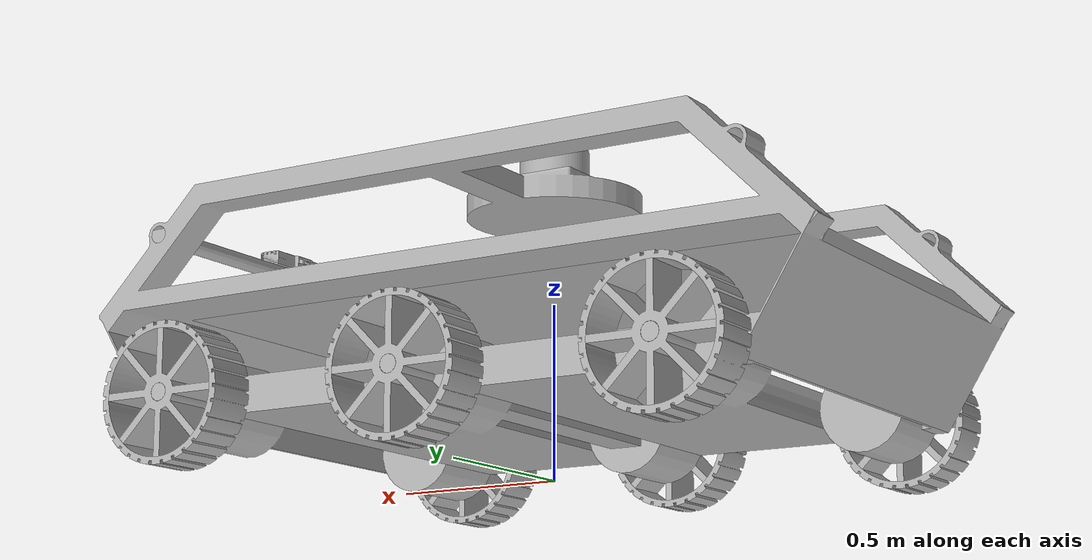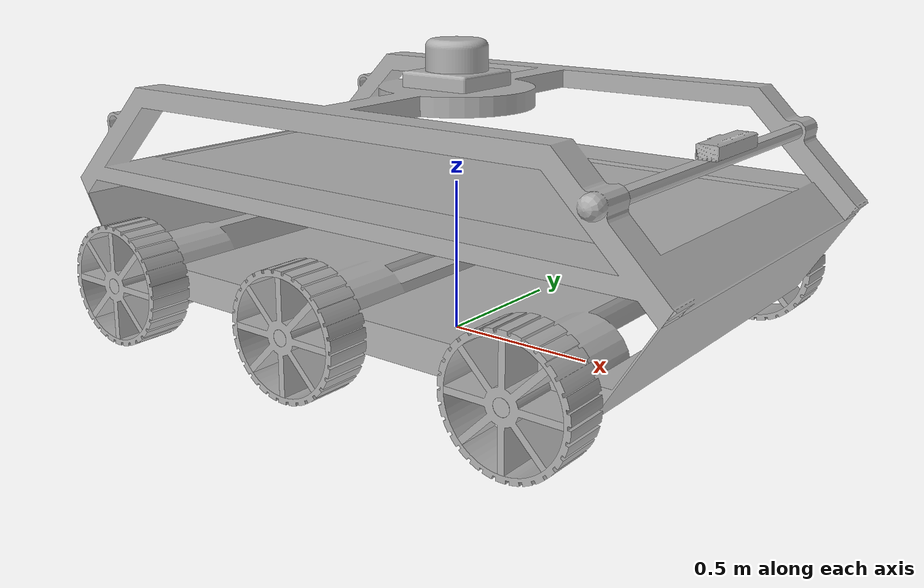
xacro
<?xml version="1.0" ?>
<robot name="big_bot" xmlns:xacro="http://www.ros.org/wiki/xacro">

<xacro:include filename="$(find big_bot_description)/urdf/materials.xacro" />

<xacro:include filename="$(find big_bot_description)/gazebo/big_bot_description_materials.gazebo" />
<xacro:include filename="$(find big_bot_description)/gazebo/big_bot_description_physics.gazebo" />
<xacro:include filename="$(find big_bot_description)/gazebo/big_bot_description_plugins.gazebo" />

<link name="base_link">
  <inertial>
    <origin rpy="0 0 0" xyz="0.0011053228922126006 -0.026924206803117964 0.3959361322214379"/>
    <mass value="184.49373888112405"/>
    <inertia ixx="49.458199" ixy="0.236093" ixz="-0.059576" iyy="80.257636" iyz="-0.843307" izz="110.187792"/>
  </inertial>
  <visual>
    <origin rpy="0 0 0" xyz="0 0 0"/>
    <geometry>
      <mesh filename="package://big_bot_description/meshes/base_link.stl" scale="0.001 0.001 0.001"/>
    </geometry>
    <material name="silver"/>
  </visual>
  <collision>
    <origin rpy="0 0 0" xyz="0 0 0"/>
    <geometry>
      <mesh filename="package://big_bot_description/meshes/base_link.stl" scale="0.001 0.001 0.001"/>
    </geometry>
  </collision>
</link>

<link name="lidar_1">
  <inertial>
    <origin rpy="0 0 0" xyz="-1.7658954039907791e-16 1.3734742031039391e-16 0.047014448995088665"/>
    <mass value="1.3952248482751741"/>
    <inertia ixx="0.007137" ixy="-0.0" ixz="-0.0" iyy="0.007137" iyz="0.0" izz="0.009989"/>
  </inertial>
  <visual>
    <origin rpy="0 0 0" xyz="-0.0 -0.0 -0.861786"/>
    <geometry>
      <mesh filename="package://big_bot_description/meshes/lidar_1.stl" scale="0.001 0.001 0.001"/>
    </geometry>
    <material name="silver"/>
  </visual>
  <collision>
    <origin rpy="0 0 0" xyz="-0.0 -0.0 -0.861786"/>
    <geometry>
      <mesh filename="package://big_bot_description/meshes/lidar_1.stl" scale="0.001 0.001 0.001"/>
    </geometry>
  </collision>
</link>

<link name="lid_1">
  <inertial>
    <origin rpy="0 0 0" xyz="0.0 0.55 -2.299357713120287e-07"/>
    <mass value="64.19200127860375"/>
    <inertia ixx="6.476037" ixy="0.0" ixz="0.0" iyy="20.586036" iyz="0.0" izz="27.055386"/>
  </inertial>
  <visual>
    <origin rpy="0 0 0" xyz="-0.0 0.55 -0.505893"/>
    <geometry>
      <mesh filename="package://big_bot_description/meshes/lid_1.stl" scale="0.001 0.001 0.001"/>
    </geometry>
    <material name="silver"/>
  </visual>
  <collision>
    <origin rpy="0 0 0" xyz="-0.0 0.55 -0.505893"/>
    <geometry>
      <mesh filename="package://big_bot_description/meshes/lid_1.stl" scale="0.001 0.001 0.001"/>
    </geometry>
  </collision>
</link>

<link name="kinect_rotate_1">
  <inertial>
    <origin rpy="0 0 0" xyz="-2.5196529551685387e-07 -0.5500000000000002 -0.0033325787167008958"/>
    <mass value="2.299282429816022"/>
    <inertia ixx="0.324065" ixy="0.0" ixz="-0.0" iyy="0.000637" iyz="-0.0" izz="0.324203"/>
  </inertial>
  <visual>
    <origin rpy="0 0 0" xyz="-0.902056 -0.55 -0.685322"/>
    <geometry>
      <mesh filename="package://big_bot_description/meshes/kinect_rotate_1.stl" scale="0.001 0.001 0.001"/>
    </geometry>
    <material name="silver"/>
  </visual>
  <collision>
    <origin rpy="0 0 0" xyz="-0.902056 -0.55 -0.685322"/>
    <geometry>
      <mesh filename="package://big_bot_description/meshes/kinect_rotate_1.stl" scale="0.001 0.001 0.001"/>
    </geometry>
  </collision>
</link>

<link name="w1_1">
  <inertial>
    <origin rpy="0 0 0" xyz="1.1102230246251565e-16 -0.06999999999999995 0.0"/>
    <mass value="16.371506609951567"/>
    <inertia ixx="0.117884" ixy="-0.0" ixz="-0.0" iyy="0.182289" iyz="-0.0" izz="0.117884"/>
  </inertial>
  <visual>
    <origin rpy="0 0 0" xyz="-0.75 -0.8 -0.2"/>
    <geometry>
      <mesh filename="package://big_bot_description/meshes/w1_1.stl" scale="0.001 0.001 0.001"/>
    </geometry>
    <material name="silver"/>
  </visual>
  <collision>
    <origin rpy="0 0 0" xyz="-0.75 -0.8 -0.2"/>
    <geometry>
      <mesh filename="package://big_bot_description/meshes/w1_1.stl" scale="0.001 0.001 0.001"/>
    </geometry>
  </collision>
</link>

<link name="t1_1">
  <inertial>
    <origin rpy="0 0 0" xyz="3.3306690738754696e-16 0.07000000000000006 6.938893903907228e-16"/>
    <mass value="0.33988478394632043"/>
    <inertia ixx="0.006343" ixy="0.0" ixz="0.0" iyy="0.011576" iyz="0.0" izz="0.006343"/>
  </inertial>
  <visual>
    <origin rpy="0 0 0" xyz="-0.75 -0.66 -0.2"/>
    <geometry>
      <mesh filename="package://big_bot_description/meshes/t1_1.stl" scale="0.001 0.001 0.001"/>
    </geometry>
    <material name="silver"/>
  </visual>
  <collision>
    <origin rpy="0 0 0" xyz="-0.75 -0.66 -0.2"/>
    <geometry>
      <mesh filename="package://big_bot_description/meshes/t1_1.stl" scale="0.001 0.001 0.001"/>
    </geometry>
  </collision>
</link>

<link name="w2_1">
  <inertial>
    <origin rpy="0 0 0" xyz="1.4030595189091785e-16 -0.07000000000000017 2.7755575615628914e-17"/>
    <mass value="16.371506609951563"/>
    <inertia ixx="0.117884" ixy="0.0" ixz="0.0" iyy="0.182289" iyz="-0.0" izz="0.117884"/>
  </inertial>
  <visual>
    <origin rpy="0 0 0" xyz="-0.0 -0.8 -0.2"/>
    <geometry>
      <mesh filename="package://big_bot_description/meshes/w2_1.stl" scale="0.001 0.001 0.001"/>
    </geometry>
    <material name="silver"/>
  </visual>
  <collision>
    <origin rpy="0 0 0" xyz="-0.0 -0.8 -0.2"/>
    <geometry>
      <mesh filename="package://big_bot_description/meshes/w2_1.stl" scale="0.001 0.001 0.001"/>
    </geometry>
  </collision>
</link>

<link name="t2_1">
  <inertial>
    <origin rpy="0 0 0" xyz="7.706566650891081e-17 0.06999999999999995 4.996003610813204e-16"/>
    <mass value="0.33988478394632043"/>
    <inertia ixx="0.006343" ixy="-0.0" ixz="0.0" iyy="0.011576" iyz="0.0" izz="0.006343"/>
  </inertial>
  <visual>
    <origin rpy="0 0 0" xyz="-0.0 -0.66 -0.2"/>
    <geometry>
      <mesh filename="package://big_bot_description/meshes/t2_1.stl" scale="0.001 0.001 0.001"/>
    </geometry>
    <material name="silver"/>
  </visual>
  <collision>
    <origin rpy="0 0 0" xyz="-0.0 -0.66 -0.2"/>
    <geometry>
      <mesh filename="package://big_bot_description/meshes/t2_1.stl" scale="0.001 0.001 0.001"/>
    </geometry>
  </collision>
</link>

<link name="w3_1">
  <inertial>
    <origin rpy="0 0 0" xyz="0.0 -0.06999999999999995 0.0"/>
    <mass value="16.371506609951567"/>
    <inertia ixx="0.117884" ixy="-0.0" ixz="0.0" iyy="0.182289" iyz="-0.0" izz="0.117884"/>
  </inertial>
  <visual>
    <origin rpy="0 0 0" xyz="0.75 -0.8 -0.2"/>
    <geometry>
      <mesh filename="package://big_bot_description/meshes/w3_1.stl" scale="0.001 0.001 0.001"/>
    </geometry>
    <material name="silver"/>
  </visual>
  <collision>
    <origin rpy="0 0 0" xyz="0.75 -0.8 -0.2"/>
    <geometry>
      <mesh filename="package://big_bot_description/meshes/w3_1.stl" scale="0.001 0.001 0.001"/>
    </geometry>
  </collision>
</link>

<link name="t3_1">
  <inertial>
    <origin rpy="0 0 0" xyz="4.440892098500626e-16 0.06999999999999995 4.996003610813204e-16"/>
    <mass value="0.33988478394632043"/>
    <inertia ixx="0.006343" ixy="-0.0" ixz="0.0" iyy="0.011576" iyz="0.0" izz="0.006343"/>
  </inertial>
  <visual>
    <origin rpy="0 0 0" xyz="0.75 -0.66 -0.2"/>
    <geometry>
      <mesh filename="package://big_bot_description/meshes/t3_1.stl" scale="0.001 0.001 0.001"/>
    </geometry>
    <material name="silver"/>
  </visual>
  <collision>
    <origin rpy="0 0 0" xyz="0.75 -0.66 -0.2"/>
    <geometry>
      <mesh filename="package://big_bot_description/meshes/t3_1.stl" scale="0.001 0.001 0.001"/>
    </geometry>
  </collision>
</link>

<link name="w4_1">
  <inertial>
    <origin rpy="0 0 0" xyz="1.1102230246251565e-16 0.06999999999999995 0.0"/>
    <mass value="16.371506609951567"/>
    <inertia ixx="0.117884" ixy="-0.0" ixz="-0.0" iyy="0.182289" iyz="0.0" izz="0.117884"/>
  </inertial>
  <visual>
    <origin rpy="0 0 0" xyz="-0.75 0.8 -0.2"/>
    <geometry>
      <mesh filename="package://big_bot_description/meshes/w4_1.stl" scale="0.001 0.001 0.001"/>
    </geometry>
    <material name="silver"/>
  </visual>
  <collision>
    <origin rpy="0 0 0" xyz="-0.75 0.8 -0.2"/>
    <geometry>
      <mesh filename="package://big_bot_description/meshes/w4_1.stl" scale="0.001 0.001 0.001"/>
    </geometry>
  </collision>
</link>

<link name="t4_1">
  <inertial>
    <origin rpy="0 0 0" xyz="3.3306690738754696e-16 -0.07000000000000028 6.938893903907228e-16"/>
    <mass value="0.33988478394632043"/>
    <inertia ixx="0.006343" ixy="-0.0" ixz="0.0" iyy="0.011576" iyz="-0.0" izz="0.006343"/>
  </inertial>
  <visual>
    <origin rpy="0 0 0" xyz="-0.75 0.66 -0.2"/>
    <geometry>
      <mesh filename="package://big_bot_description/meshes/t4_1.stl" scale="0.001 0.001 0.001"/>
    </geometry>
    <material name="silver"/>
  </visual>
  <collision>
    <origin rpy="0 0 0" xyz="-0.75 0.66 -0.2"/>
    <geometry>
      <mesh filename="package://big_bot_description/meshes/t4_1.stl" scale="0.001 0.001 0.001"/>
    </geometry>
  </collision>
</link>

<link name="w5_1">
  <inertial>
    <origin rpy="0 0 0" xyz="1.4030595189091785e-16 0.07000000000000006 2.7755575615628914e-17"/>
    <mass value="16.371506609951563"/>
    <inertia ixx="0.117884" ixy="-0.0" ixz="0.0" iyy="0.182289" iyz="0.0" izz="0.117884"/>
  </inertial>
  <visual>
    <origin rpy="0 0 0" xyz="-0.0 0.8 -0.2"/>
    <geometry>
      <mesh filename="package://big_bot_description/meshes/w5_1.stl" scale="0.001 0.001 0.001"/>
    </geometry>
    <material name="silver"/>
  </visual>
  <collision>
    <origin rpy="0 0 0" xyz="-0.0 0.8 -0.2"/>
    <geometry>
      <mesh filename="package://big_bot_description/meshes/w5_1.stl" scale="0.001 0.001 0.001"/>
    </geometry>
  </collision>
</link>

<link name="t5_1">
  <inertial>
    <origin rpy="0 0 0" xyz="7.706566650891081e-17 -0.06999999999999984 4.996003610813204e-16"/>
    <mass value="0.33988478394632043"/>
    <inertia ixx="0.006343" ixy="-0.0" ixz="0.0" iyy="0.011576" iyz="0.0" izz="0.006343"/>
  </inertial>
  <visual>
    <origin rpy="0 0 0" xyz="-0.0 0.66 -0.2"/>
    <geometry>
      <mesh filename="package://big_bot_description/meshes/t5_1.stl" scale="0.001 0.001 0.001"/>
    </geometry>
    <material name="silver"/>
  </visual>
  <collision>
    <origin rpy="0 0 0" xyz="-0.0 0.66 -0.2"/>
    <geometry>
      <mesh filename="package://big_bot_description/meshes/t5_1.stl" scale="0.001 0.001 0.001"/>
    </geometry>
  </collision>
</link>

<link name="w6_1">
  <inertial>
    <origin rpy="0 0 0" xyz="0.0 0.06999999999999995 0.0"/>
    <mass value="16.371506609951567"/>
    <inertia ixx="0.117884" ixy="0.0" ixz="0.0" iyy="0.182289" iyz="0.0" izz="0.117884"/>
  </inertial>
  <visual>
    <origin rpy="0 0 0" xyz="0.75 0.8 -0.2"/>
    <geometry>
      <mesh filename="package://big_bot_description/meshes/w6_1.stl" scale="0.001 0.001 0.001"/>
    </geometry>
    <material name="silver"/>
  </visual>
  <collision>
    <origin rpy="0 0 0" xyz="0.75 0.8 -0.2"/>
    <geometry>
      <mesh filename="package://big_bot_description/meshes/w6_1.stl" scale="0.001 0.001 0.001"/>
    </geometry>
  </collision>
</link>

<link name="t6_1">
  <inertial>
    <origin rpy="0 0 0" xyz="4.440892098500626e-16 -0.07000000000000028 4.996003610813204e-16"/>
    <mass value="0.33988478394632043"/>
    <inertia ixx="0.006343" ixy="0.0" ixz="0.0" iyy="0.011576" iyz="-0.0" izz="0.006343"/>
  </inertial>
  <visual>
    <origin rpy="0 0 0" xyz="0.75 0.66 -0.2"/>
    <geometry>
      <mesh filename="package://big_bot_description/meshes/t6_1.stl" scale="0.001 0.001 0.001"/>
    </geometry>
    <material name="silver"/>
  </visual>
  <collision>
    <origin rpy="0 0 0" xyz="0.75 0.66 -0.2"/>
    <geometry>
      <mesh filename="package://big_bot_description/meshes/t6_1.stl" scale="0.001 0.001 0.001"/>
    </geometry>
  </collision>
</link>

<link name="kinect_1">
  <inertial>
    <origin rpy="0 0 0" xyz="0.02022286932267714 0.0005576148289877128 0.02823235974256022"/>
    <mass value="4.334636679065321"/>
    <inertia ixx="0.021339" ixy="0.000136" ixz="-8.4e-05" iyy="0.002524" iyz="1.7e-05" izz="0.02246"/>
  </inertial>
  <visual>
    <origin rpy="0 0 0" xyz="-0.902056 -0.0 -0.699941"/>
    <geometry>
      <mesh filename="package://big_bot_description/meshes/kinect_1.stl" scale="0.001 0.001 0.001"/>
    </geometry>
    <material name="silver"/>
  </visual>
  <collision>
    <origin rpy="0 0 0" xyz="-0.902056 -0.0 -0.699941"/>
    <geometry>
      <mesh filename="package://big_bot_description/meshes/kinect_1.stl" scale="0.001 0.001 0.001"/>
    </geometry>
  </collision>
</link>

<joint name="lidar_joint" type="fixed">
  <origin rpy="0 0 0" xyz="0.0 0.0 0.861786"/>
  <parent link="base_link"/>
  <child link="lidar_1"/>
</joint>

<joint name="lid_joint" type="fixed">
  <origin rpy="0 0 0" xyz="0.0 -0.55 0.505893"/>
  <parent link="base_link"/>
  <child link="lid_1"/>
</joint>

<joint name="rotate_kinect" type="fixed">
  <origin rpy="0 0 0" xyz="0.902056 0.55 0.685322"/>
  <parent link="base_link"/>
  <child link="kinect_rotate_1"/>
  <axis xyz="0.0 1.0 0.0"/>
</joint>

<joint name="m1" type="continuous">
  <origin rpy="0 0 0" xyz="0.75 0.8 0.2"/>
  <parent link="base_link"/>
  <child link="w1_1"/>
  <axis xyz="0.0 1.0 0.0"/>
</joint>

<joint name="mt1" type="fixed">
  <origin rpy="0 0 0" xyz="0.0 -0.14 0.0"/>
  <parent link="w1_1"/>
  <child link="t1_1"/>
</joint>

<joint name="m2" type="continuous">
  <origin rpy="0 0 0" xyz="0.0 0.8 0.2"/>
  <parent link="base_link"/>
  <child link="w2_1"/>
  <axis xyz="0.0 1.0 0.0"/>
</joint>

<joint name="mt2" type="fixed">
  <origin rpy="0 0 0" xyz="0.0 -0.14 0.0"/>
  <parent link="w2_1"/>
  <child link="t2_1"/>
</joint>

<joint name="m3" type="continuous">
  <origin rpy="0 0 0" xyz="-0.75 0.8 0.2"/>
  <parent link="base_link"/>
  <child link="w3_1"/>
  <axis xyz="0.0 1.0 0.0"/>
</joint>

<joint name="mt3" type="fixed">
  <origin rpy="0 0 0" xyz="0.0 -0.14 0.0"/>
  <parent link="w3_1"/>
  <child link="t3_1"/>
</joint>

<joint name="m4" type="continuous">
  <origin rpy="0 0 0" xyz="0.75 -0.8 0.2"/>
  <parent link="base_link"/>
  <child link="w4_1"/>
  <axis xyz="0.0 1.0 0.0"/>
</joint>

<joint name="mt4" type="fixed">
  <origin rpy="0 0 0" xyz="0.0 0.14 0.0"/>
  <parent link="w4_1"/>
  <child link="t4_1"/>
</joint>

<joint name="m5" type="continuous">
  <origin rpy="0 0 0" xyz="0.0 -0.8 0.2"/>
  <parent link="base_link"/>
  <child link="w5_1"/>
  <axis xyz="0.0 1.0 0.0"/>
</joint>

<joint name="mt5" type="fixed">
  <origin rpy="0 0 0" xyz="0.0 0.14 0.0"/>
  <parent link="w5_1"/>
  <child link="t5_1"/>
</joint>

<joint name="m6" type="continuous">
  <origin rpy="0 0 0" xyz="-0.75 -0.8 0.2"/>
  <parent link="base_link"/>
  <child link="w6_1"/>
  <axis xyz="0.0 1.0 0.0"/>
</joint>

<joint name="mt6" type="fixed">
  <origin rpy="0 0 0" xyz="0.0 0.14 0.0"/>
  <parent link="w6_1"/>
  <child link="t6_1"/>
</joint>

<joint name="kinect_joint" type="fixed">
  <origin rpy="0 0 0" xyz="0.0 -0.55 0.014619"/>
  <parent link="kinect_rotate_1"/>
  <child link="kinect_1"/>
</joint>

<!-- ##### Kinect fix ############# -->
<joint name="camera_rgb_joint" type="fixed">
  <origin xyz="0.15 0 0" rpy="1.57079 0 1.57079"/>
  <parent link="kinect_1"/>
  <child link="camera_rgbd_frame" />
</joint>
<link name="camera_rgbd_frame"/>

</robot>

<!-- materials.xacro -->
<robot name="big_bot" xmlns:xacro="http://www.ros.org/wiki/xacro" >

<material name="silver">
  <color rgba="0.700 0.700 0.700 1.000"/>
</material>

</robot>

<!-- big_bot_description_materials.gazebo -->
<robot name="big_bot" xmlns:xacro="http://www.ros.org/wiki/xacro" >

<xacro:property name="body_color" value="Gazebo/FlatBlack" />
<xacro:property name="sensor_color" value="Gazebo/DarkGrey" />
<xacro:property name="wheel_color" value="Gazebo/DarkGrey" />
<xacro:property name="lid_color" value="Gazebo/BlackTransparent" />

<gazebo reference="base_link">
  <material>${body_color}</material>

</gazebo>

<gazebo reference="lidar_1">
  <material>${sensor_color}</material>

</gazebo>

<gazebo reference="lid_1">
  <material>${lid_color}</material>

</gazebo>

<gazebo reference="kinect_rotate_1">
  <material>${body_color}</material>

</gazebo>

<gazebo reference="w1_1">
  <material>${wheel_color}</material>

</gazebo>

<gazebo reference="t1_1">
  <material>${body_color}</material>

</gazebo>

<gazebo reference="w2_1">
  <material>${wheel_color}</material>

</gazebo>

<gazebo reference="t2_1">
  <material>${body_color}</material>

</gazebo>

<gazebo reference="w3_1">
  <material>${wheel_color}</material>

</gazebo>

<gazebo reference="t3_1">
  <material>${body_color}</material>

</gazebo>

<gazebo reference="w4_1">
  <material>${wheel_color}</material>

</gazebo>

<gazebo reference="t4_1">
  <material>${body_color}</material>

</gazebo>

<gazebo reference="w5_1">
  <material>${wheel_color}</material>

</gazebo>

<gazebo reference="t5_1">
  <material>${body_color}</material>

</gazebo>

<gazebo reference="w6_1">
  <material>${wheel_color}</material>

</gazebo>

<gazebo reference="t6_1">
  <material>${body_color}</material>

</gazebo>

<gazebo reference="kinect_1">
  <material>${sensor_color}</material>

</gazebo>

</robot>
